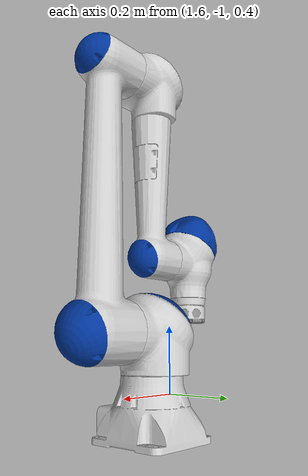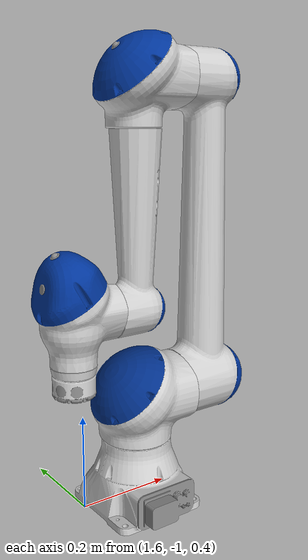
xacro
<?xml version="1.0"?>
<!--
  What MoveIt and ros2_control load: the Inspector station from
  motobat_description plus its ros2_control block.

  sim:=mock (default, demo.launch.py) or sim:=gazebo (task 2.2).
-->
<robot xmlns:xacro="http://www.ros.org/wiki/xacro" name="motobat_inspector">
  <xacro:arg name="initial_positions_file" default="$(find motobat_hc10dt_moveit_config)/config/initial_positions.yaml"/>
  <xacro:arg name="sim" default="mock"/>

  <xacro:include filename="$(find motobat_description)/urdf/inspector_station.urdf.xacro"/>
  <xacro:include filename="$(find motobat_hc10dt_moveit_config)/config/motobat_inspector.ros2_control.xacro"/>

  <xacro:motobat_inspector_ros2_control name="InspectorSystem" prefix="s3_"
      initial_positions_file="$(arg initial_positions_file)" sim="$(arg sim)"/>
</robot>

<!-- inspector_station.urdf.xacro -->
<robot name="motobat_inspector" xmlns:xacro="http://ros.org/wiki/xacro">

  <xacro:include filename="$(find motobat_description)/urdf/line_layout.xacro"/>
  <xacro:include filename="$(find motobat_description)/urdf/inspector_station.xacro"/>

  <link name="world"/>

  <xacro:motobat_inspector_station prefix="s3_"/>

</robot>

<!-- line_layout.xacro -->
<robot xmlns:xacro="http://ros.org/wiki/xacro">

  <!-- Station pitch along the line. Change here, not in each mount. -->
  <xacro:property name="pitch"        value="1.2"/>
  <xacro:property name="table_height" value="0.0"/>

  <xacro:property name="s3_x"   value="${pitch*1.5}"/>
  <xacro:property name="s3_y"   value="-0.9"/>
  <xacro:property name="s3_z"   value="0.3"/>
  <xacro:property name="s3_yaw" value="${pi/2}"/>

  <!-- Bolt an arm's base_link to world at a given pose. -->
  <xacro:macro name="station_mount" params="prefix x y z yaw">
    <joint name="${prefix}mount" type="fixed">
      <parent link="world"/>
      <child  link="${prefix}base_link"/>
      <origin xyz="${x} ${y} ${z}" rpy="0 0 ${yaw}"/>
    </joint>
  </xacro:macro>

</robot>

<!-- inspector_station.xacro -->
<robot xmlns:xacro="http://ros.org/wiki/xacro">

  <xacro:include filename="$(find motobat_description)/urdf/hc10dt_macro.xacro"/>

  <xacro:macro name="motobat_inspector_station" params="prefix">
    <xacro:motobat_hc10dt prefix="${prefix}"/>
    <xacro:station_mount prefix="${prefix}" x="${s3_x}" y="${s3_y}" z="${s3_z}" yaw="${s3_yaw}"/>
  </xacro:macro>

</robot>

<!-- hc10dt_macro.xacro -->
<robot xmlns:xacro="http://ros.org/wiki/xacro">
  <xacro:macro name="motobat_hc10dt" params="prefix">
    <xacro:property name="hc10dt_inertials"
        value="${xacro.load_yaml('$(find motobat_description)/config/hc10dt_inertials.yaml')['hc10dt_inertials']}"/>
    <xacro:macro name="hc10dt_inertial" params="link">
      <xacro:property name="p" value="${hc10dt_inertials[link]}"/>
      <inertial>
        <origin xyz="${p['xyz'][0]} ${p['xyz'][1]} ${p['xyz'][2]}" rpy="0 0 0"/>
        <mass value="${p['mass']}"/>
        <inertia ixx="${p['ixx']}" ixy="${p['ixy']}" ixz="${p['ixz']}"
                 iyy="${p['iyy']}" iyz="${p['iyz']}" izz="${p['izz']}"/>
      </inertial>
    </xacro:macro>

    <xacro:include filename="$(find motoman_resources)/urdf/common_materials.xacro"/>

    <!-- link list -->
    <link name="${prefix}base_link">
      <xacro:hc10dt_inertial link="base_link"/>
      <visual>
        <geometry>
          <mesh filename="package://motoman_hc10_support/meshes/hc10/visual/base_link.dae"/>
        </geometry>
        <xacro:material_yaskawa_blue/>
      </visual>
      <collision>
        <geometry>
          <mesh filename="package://motoman_hc10_support/meshes/hc10/collision/base_link.stl"/>
        </geometry>
      </collision>
    </link>
    <link name="${prefix}link_1_s">
      <xacro:hc10dt_inertial link="link_1_s"/>
      <visual>
        <geometry>
          <mesh filename="package://motoman_hc10_support/meshes/hc10/visual/link_1_s.dae"/>
        </geometry>
        <xacro:material_yaskawa_blue/>
      </visual>
      <collision>
        <geometry>
          <mesh filename="package://motoman_hc10_support/meshes/hc10/collision/link_1_s.stl"/>
        </geometry>
      </collision>
    </link>
    <link name="${prefix}link_2_l">
      <xacro:hc10dt_inertial link="link_2_l"/>
      <visual>
        <geometry>
          <mesh filename="package://motoman_hc10_support/meshes/hc10/visual/link_2_l.dae"/>
        </geometry>
        <xacro:material_yaskawa_blue/>
      </visual>
      <collision>
        <geometry>
          <mesh filename="package://motoman_hc10_support/meshes/hc10/collision/link_2_l.stl"/>
        </geometry>
      </collision>
    </link>
    <link name="${prefix}link_3_u">
      <xacro:hc10dt_inertial link="link_3_u"/>
      <visual>
        <geometry>
          <mesh filename="package://motoman_hc10_support/meshes/hc10/visual/link_3_u.dae"/>
        </geometry>
        <xacro:material_yaskawa_blue/>
      </visual>
      <collision>
        <geometry>
          <mesh filename="package://motoman_hc10_support/meshes/hc10/collision/link_3_u.stl"/>
        </geometry>
      </collision>
    </link>
    <link name="${prefix}link_4_r">
      <xacro:hc10dt_inertial link="link_4_r"/>
      <visual>
        <geometry>
          <mesh filename="package://motoman_hc10_support/meshes/hc10/visual/link_4_r.dae"/>
        </geometry>
        <xacro:material_yaskawa_blue/>
      </visual>
      <collision>
        <geometry>
          <mesh filename="package://motoman_hc10_support/meshes/hc10/collision/link_4_r.stl"/>
        </geometry>
      </collision>
    </link>
    <link name="${prefix}link_5_b">
      <xacro:hc10dt_inertial link="link_5_b"/>
      <visual>
        <geometry>
          <mesh filename="package://motoman_hc10_support/meshes/hc10/visual/link_5_b.dae"/>
        </geometry>
        <xacro:material_yaskawa_blue/>
      </visual>
      <collision>
        <geometry>
          <mesh filename="package://motoman_hc10_support/meshes/hc10/collision/link_5_b.stl"/>
        </geometry>
      </collision>
    </link>
    <link name="${prefix}link_6_t">
      <xacro:hc10dt_inertial link="link_6_t"/>
      <visual>
        <geometry>
          <mesh filename="package://motoman_hc10_support/meshes/hc10dt/visual/link_6_t.dae"/>
        </geometry>
        <xacro:material_yaskawa_blue/>
      </visual>
      <collision>
        <geometry>
          <mesh filename="package://motoman_hc10_support/meshes/hc10dt/collision/link_6_t.stl"/>
       </geometry>
      </collision>
    </link>
    <link name="${prefix}tool0"/>
    <!-- end of link list -->

    <!-- joint list -->
    <joint name="${prefix}joint_1_s" type="revolute">
      <parent link="${prefix}base_link"/>
      <child link="${prefix}link_1_s"/>
      <origin xyz="0 0 0.275" rpy="0 0 0" />
      <axis xyz="0 0 1" />
      <limit lower="${radians(-180)}" upper="${radians(180)}" effort="368.48" velocity="${radians(130)}"/>
    </joint>
    <joint name="${prefix}joint_2_l" type="revolute">
      <parent link="${prefix}link_1_s"/>
      <child link="${prefix}link_2_l"/>
      <origin xyz="0 0 0" rpy="0 0 0" />
      <axis xyz="0 1 0" />
      <limit lower="${radians(-180)}" upper="${radians(180)}" effort="368.48" velocity="${radians(130)}"/>
    </joint>
    <joint name="${prefix}joint_3_u" type="revolute">
      <parent link="${prefix}link_2_l"/>
      <child link="${prefix}link_3_u"/>
      <origin xyz="0 0 0.700" rpy="0 0 0" />
      <axis xyz="0 -1 0" />
      <limit lower="${radians(-5)}" upper="${radians(355)}" effort="141.12" velocity="${radians(180)}"/>
    </joint>
    <joint name="${prefix}joint_4_r" type="revolute">
      <parent link="${prefix}link_3_u"/>
      <child link="${prefix}link_4_r"/>
      <origin xyz="0 0 -0.500" rpy="0 0 0" />
      <axis xyz="0 0 1" />
      <limit lower="${radians(-180)}" upper="${radians(180)}" effort="39.20" velocity="${radians(180)}"/>
    </joint>
    <joint name="${prefix}joint_5_b" type="revolute">
      <parent link="${prefix}link_4_r"/>
      <child link="${prefix}link_5_b"/>
      <origin xyz="0 0.162 0" rpy="0 0 0" />
      <axis xyz="0 -1 0" />
      <limit lower="${radians(-180)}" upper="${radians(180)}" effort="31.36" velocity="${radians(250)}"/>
    </joint>
    <joint name="${prefix}joint_6_t" type="revolute">
      <parent link="${prefix}link_5_b"/>
      <child link="${prefix}link_6_t"/>
      <origin xyz="0 0 0" rpy="0 0 0" />
      <axis xyz="0 0 1" />
      <limit lower="${radians(-180)}" upper="${radians(180)}" effort="31.36" velocity="${radians(250)}"/>
    </joint>
    <joint name="${prefix}joint_6_t-tool0" type="fixed">
      <origin xyz="0 0 -0.170" rpy="${pi} 0 0"/>
      <parent link="${prefix}link_6_t"/>
      <child link="${prefix}tool0"/>
    </joint>
    <!-- end of joint list -->

    <!-- ROS base_link to Robot Manufacturer World Coordinates transform -->
    <link name="${prefix}base" />
    <joint name="${prefix}base_link-base" type="fixed">
      <origin xyz="0 0 0.275" rpy="0 0 0"/>
      <parent link="${prefix}base_link"/>
      <child link="${prefix}base"/>
    </joint>
  </xacro:macro>
</robot>
